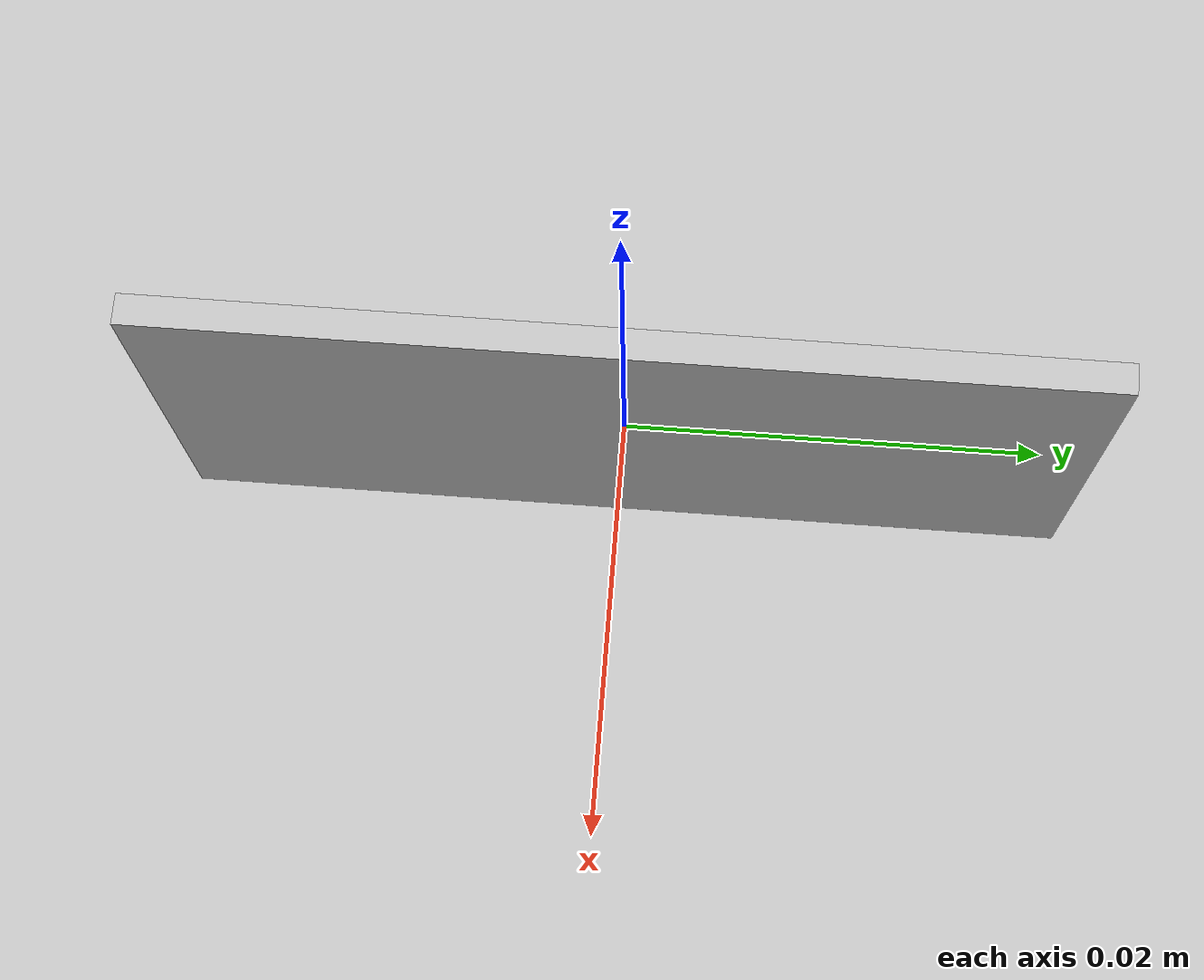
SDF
<?xml version="1.0" ?>
<sdf version="1.5">
    <model name="hcsr04">
        <pose>0 0 0 0 0 0</pose>
        <static>true</static>
        <link name="hcsr04_link">
            <pose>0 0 0 0 0 0</pose>
            <gravity>false</gravity>
            <visual name="hcsr04_visual">
                <geometry>
                    <box>
                        <size>0.0015 0.045 0.02</size>
                    </box>
                </geometry>
            </visual>
            <collision name="hcsr04_collision">
                <geometry>
                    <box>
                        <size>0.0015 0.045 0.02</size>
                    </box>
                </geometry>
            </collision>
            <sensor name="hcsr04-sensor" type="sonar">
                <plugin name="hcsr04_sensor_plugin_plugin" filename="libsim_sonar_plugin.so">
                    <fov>0.05</fov>
                    <robotNamespace></robotNamespace>
                    <frameName>/hcsr04</frameName>
                    <topicName>/sensor/sonar</topicName>
                </plugin>
                <pose>0 0 0 0 -1.5707 0</pose>
                <sonar>
                    <min>0.02</min>
                    <max>2.00</max>
                    <radius>0.02</radius>
                </sonar>
                <always_on>1</always_on>
                <update_rate>30</update_rate>
                <visualize>true</visualize>
            </sensor>
        </link>

    </model>
</sdf>
